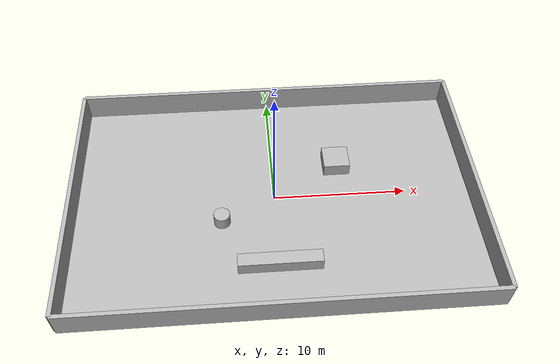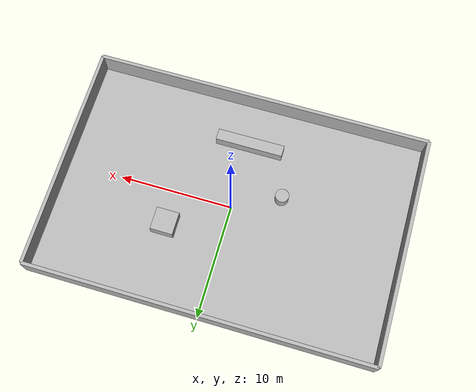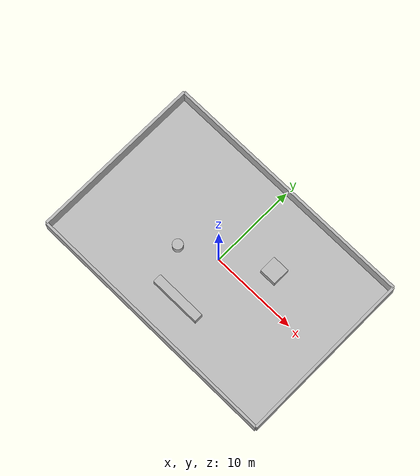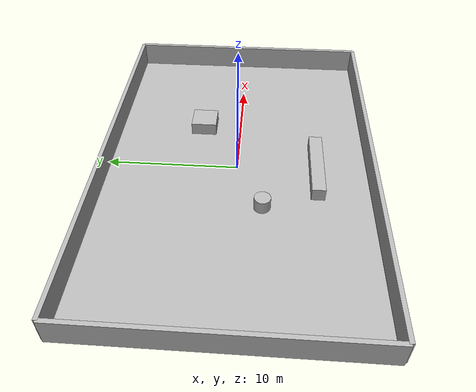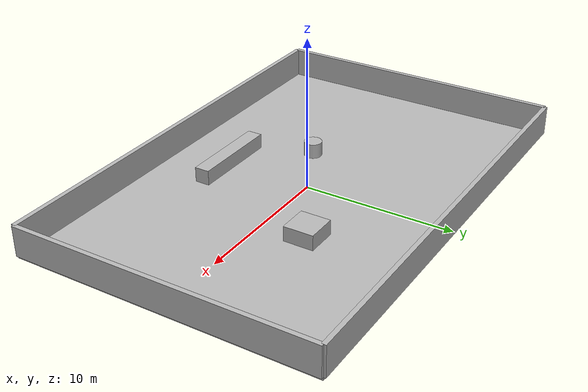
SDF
<sdf version="1.9">
  <world name="underwater_world">

    <gravity>0 0 -9.81</gravity>

    <scene>
      <ambient>0.1 0.1 0.4 1</ambient>
      <background>0.0 0.0 0.3 1</background>
      <fog>
        <type>linear</type>
        <color>0.0 0.1 0.3 1</color>
        <start>5</start>
        <end>40</end>
      </fog>
    </scene>

    <physics name="ode" type="ode">
      <max_step_size>0.001</max_step_size>
      <real_time_update_rate>1000</real_time_update_rate>
    </physics>

    <!-- Floor -->
    <model name="pool_floor">
      <static>true</static>
      <pose>0 0 -0.1 0 0 0</pose>
      <link name="link">
        <collision name="collision">
          <geometry><box><size>30 20 0.2</size></box></geometry>
        </collision>
        <visual name="visual">
          <geometry><box><size>30 20 0.2</size></box></geometry>
        </visual>
      </link>
    </model>

    <!-- Walls -->
    <model name="wall_north">
      <static>true</static>
      <pose>0 10 1 0 0 0</pose>
      <link name="link">
        <collision name="collision"><geometry><box><size>30 0.3 2</size></box></geometry></collision>
        <visual name="visual"><geometry><box><size>30 0.3 2</size></box></geometry></visual>
      </link>
    </model>

    <model name="wall_south">
      <static>true</static>
      <pose>0 -10 1 0 0 0</pose>
      <link name="link">
        <collision name="collision"><geometry><box><size>30 0.3 2</size></box></geometry></collision>
        <visual name="visual"><geometry><box><size>30 0.3 2</size></box></geometry></visual>
      </link>
    </model>

    <model name="wall_east">
      <static>true</static>
      <pose>15 0 1 0 0 0</pose>
      <link name="link">
        <collision name="collision"><geometry><box><size>0.3 20 2</size></box></geometry></collision>
        <visual name="visual"><geometry><box><size>0.3 20 2</size></box></geometry></visual>
      </link>
    </model>

    <model name="wall_west">
      <static>true</static>
      <pose>-15 0 1 0 0 0</pose>
      <link name="link">
        <collision name="collision"><geometry><box><size>0.3 20 2</size></box></geometry></collision>
        <visual name="visual"><geometry><box><size>0.3 20 2</size></box></geometry></visual>
      </link>
    </model>

    <!-- Simple obstacles (Assignment-2 style) -->
    <model name="obs_1">
      <static>true</static>
      <pose>5 3 0.5 0 0 0</pose>
      <link name="link">
        <collision name="collision"><geometry><box><size>2 2 1</size></box></geometry></collision>
        <visual name="visual"><geometry><box><size>2 2 1</size></box></geometry></visual>
      </link>
    </model>

    <model name="obs_2">
      <static>true</static>
      <pose>-4 -2 0.5 0 0 0</pose>
      <link name="link">
        <collision name="collision"><geometry><cylinder><radius>0.6</radius><length>1</length></cylinder></geometry></collision>
        <visual name="visual"><geometry><cylinder><radius>0.6</radius><length>1</length></cylinder></geometry></visual>
      </link>
    </model>

    <model name="obs_3">
      <static>true</static>
      <pose>0 -6 0.5 0 0 0</pose>
      <link name="link">
        <collision name="collision"><geometry><box><size>6 1 1</size></box></geometry></collision>
        <visual name="visual"><geometry><box><size>6 1 1</size></box></geometry></visual>
      </link>
    </model>

  </world>
</sdf>
